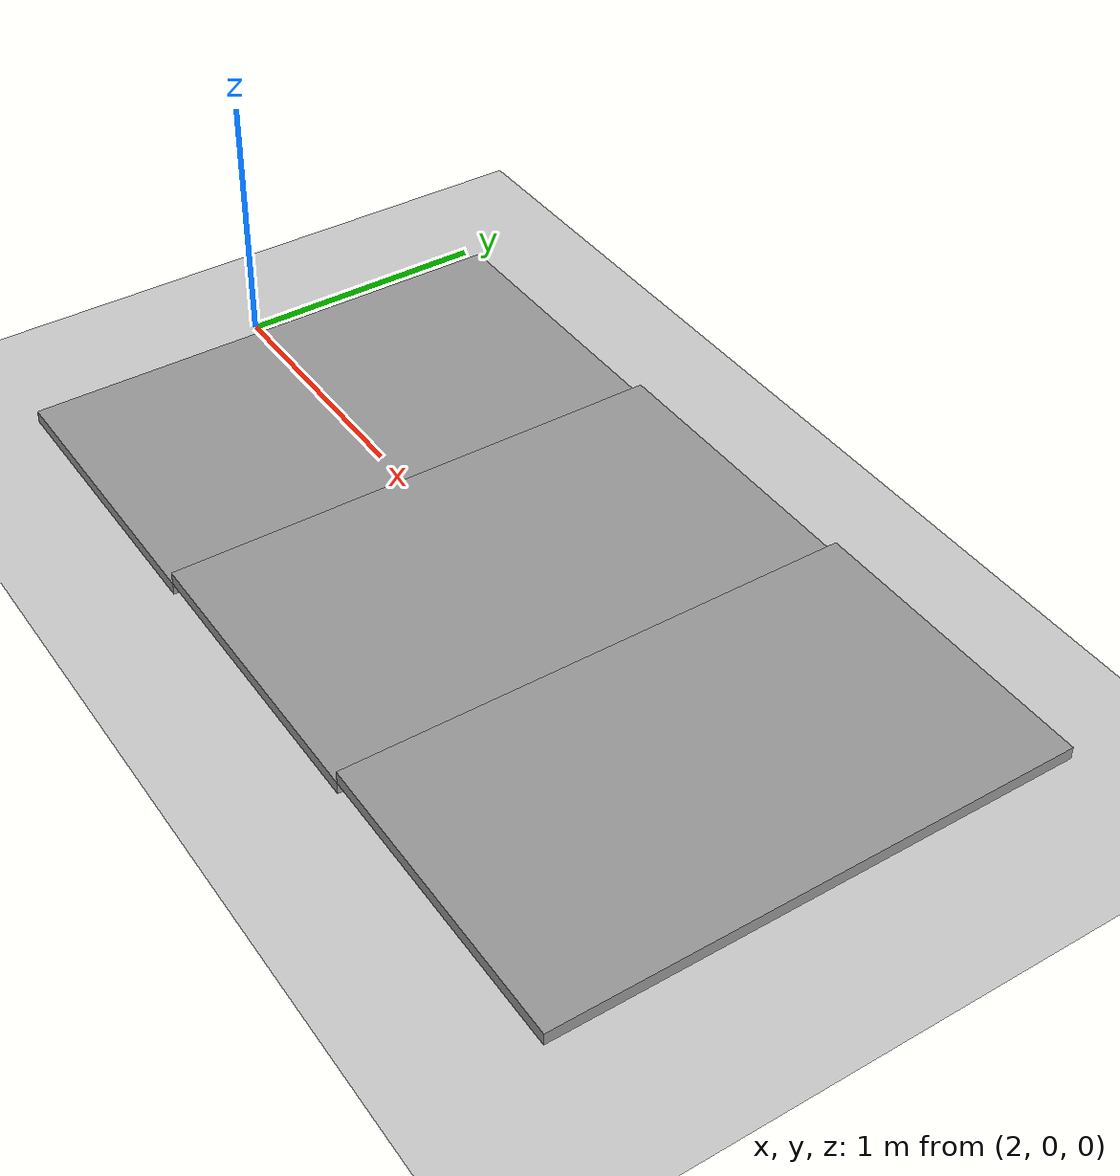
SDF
<sdf version="1.5">
 <world name="default">
  <light name="sun" type="directional">
   <pose>0 0 10 0 -0 0</pose>
   <diffuse>0.8 0.8 0.8 1</diffuse>
   <specular>0.2 0.2 0.2 1</specular>
   <attenuation>
    <range>1000</range>
    <constant>0.9</constant>
    <linear>0.01</linear>
    <quadratic>0.001</quadratic>
   </attenuation>
   <direction>-0.5 0.1 -0.9</direction>
   <spot><inner_angle>0</inner_angle><outer_angle>0</outer_angle><falloff>0</falloff></spot>
  </light>
  <model name="ground_plane">
   <static>1</static>
   <link name="link">
    <collision name="collision">
     <geometry><plane><normal>0 0 1</normal><size>100 100</size></plane></geometry>
     <surface>
      <contact><collide_bitmask>65535</collide_bitmask></contact>
      <friction><ode><mu>100</mu><mu2>50</mu2></ode></friction>
     </surface>
    </collision>
    <visual name="visual">
     <cast_shadows>0</cast_shadows>
     <geometry><plane><normal>0 0 1</normal><size>100 100</size></plane></geometry>
     <material>
      <script><uri>file://media/materials/scripts/gazebo.material</uri><name>Gazebo/Grey</name></script>
     </material>
    </visual>
   </link>
  </model>
  <gravity>0 0 -9.8</gravity>
  <magnetic_field>6e-06 2.3e-05 -4.2e-05</magnetic_field>
  <atmosphere type="adiabatic"/>
  <physics type="ode">
   <max_step_size>0.001</max_step_size>
   <real_time_factor>1</real_time_factor>
   <real_time_update_rate>1000</real_time_update_rate>
  </physics>
  <scene><ambient>0.4 0.4 0.4 1</ambient><background>0.7 0.7 0.7 1</background><shadows>1</shadows></scene>
  <spherical_coordinates>
   <surface_model>EARTH_WGS84</surface_model>
   <latitude_deg>0</latitude_deg>
   <longitude_deg>0</longitude_deg>
   <elevation>0</elevation>
   <heading_deg>0</heading_deg>
  </spherical_coordinates>
  <model name="waao_world">
   <pose>2.98141 0.003382 0 0 -0 0</pose>
   <link name="Stairs_1">
    <visual name="Stairs_1_Visual_0">
     <pose>-0.291667 -0 0.025 0 -0 1.5708</pose>
     <geometry><box><size>2 1.16667 0.05</size></box></geometry>
     <material>
      <script><uri>file://media/materials/scripts/gazebo.material</uri><name>Gazebo/Grey</name></script>
      <ambient>1 1 1 1</ambient>
     </material>
     <meta><layer>0</layer></meta>
    </visual>
    <collision name="Stairs_1_Collision_0">
     <geometry><box><size>2 1.16667 0.05</size></box></geometry>
     <pose>-0.291667 -0 0.025 0 -0 1.5708</pose>
    </collision>
    <visual name="Stairs_1_Visual_1">
     <pose>0.875 0 0.075 0 -0 1.5708</pose>
     <geometry><box><size>2 1.16667 0.05</size></box></geometry>
     <material>
      <script><uri>file://media/materials/scripts/gazebo.material</uri><name>Gazebo/Grey</name></script>
      <ambient>1 1 1 1</ambient>
     </material>
     <meta><layer>0</layer></meta>
    </visual>
    <collision name="Stairs_1_Collision_1">
     <geometry><box><size>2 1.16667 0.05</size></box></geometry>
     <pose>0.875 0 0.075 0 -0 1.5708</pose>
    </collision>
    <visual name="Stairs_1_Visual_2">
     <pose>2.04167 0 0.125 0 -0 1.5708</pose>
     <geometry><box><size>2 1.16667 0.05</size></box></geometry>
     <material>
      <script><uri>file://media/materials/scripts/gazebo.material</uri><name>Gazebo/Grey</name></script>
      <ambient>1 1 1 1</ambient>
     </material>
     <meta><layer>0</layer></meta>
    </visual>
    <collision name="Stairs_1_Collision_2">
     <geometry><box><size>2 1.16667 0.05</size></box></geometry>
     <pose>2.04167 0 0.125 0 -0 1.5708</pose>
    </collision>
   </link>
   <static>1</static>
  </model>
 </world>
</sdf>
